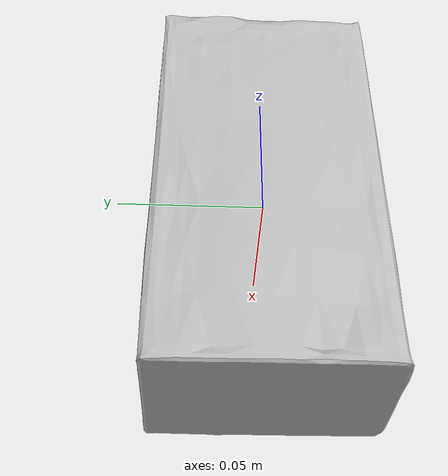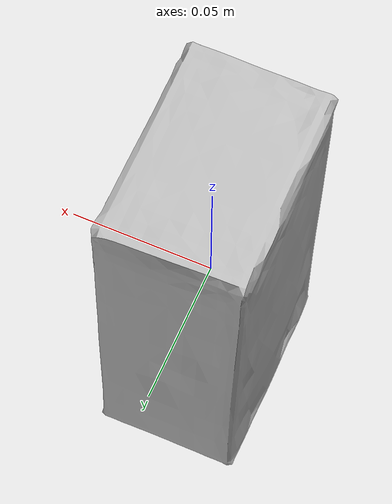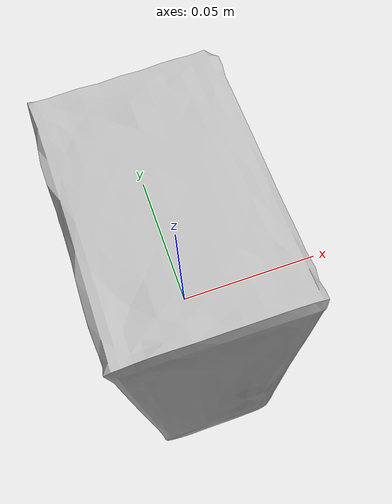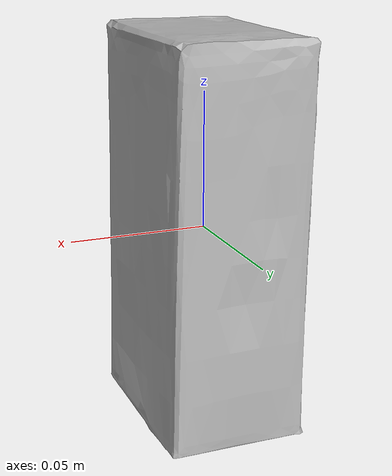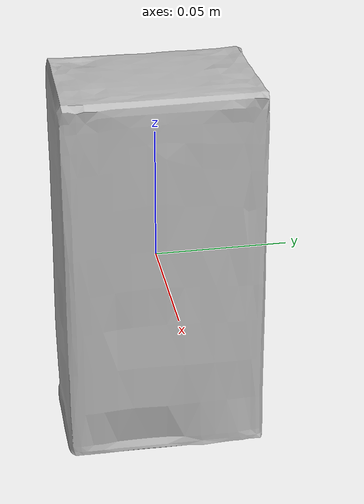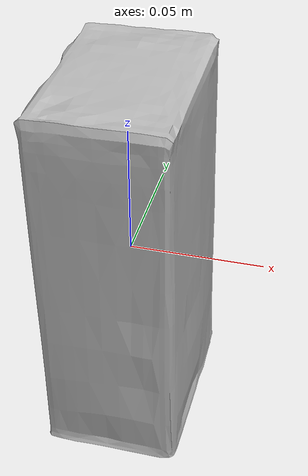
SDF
<?xml version='1.0'?>
<sdf version='1.7'>
  <model name='MyWorld'>
    <link name='link'>
      <inertial>
        <pose>0 0 0 0 -0 0</pose>
        <mass>0.1</mass>
        <inertia>
          <ixx>1e-05</ixx>
          <ixy>0</ixy>
          <ixz>0</ixz>
          <iyy>1e-05</iyy>
          <iyz>0</iyz>
          <izz>1e-05</izz>
        </inertia>
      </inertial>
      <self_collide>0</self_collide>
      <enable_wind>0</enable_wind>
      <kinematic>0</kinematic>
      <pose>0 0 0 0 -0 0</pose>
      <gravity>1</gravity>
      <visual name='visual'>
        <pose>0 0 0 0 -0 0</pose>
        <geometry>
          <mesh>
            <uri>/home/jan/ws_myrobot/src/myrobot/model/objects/oats/oats.dae</uri>
          </mesh>
        </geometry>
        <material>
          <lighting>1</lighting>
          <shader type='pixel'>
            <normal_map>__default__</normal_map>
          </shader>
        </material>
        <transparency>0</transparency>
        <cast_shadows>1</cast_shadows>
      </visual>
      <collision name='collision'>
        <laser_retro>0</laser_retro>
        <max_contacts>10</max_contacts>
        <pose>0 0 0 0 -0 0</pose>
        <geometry>
          <mesh>
            <uri>/home/jan/ws_myrobot/src/myrobot/model/objects/oats/oats.dae</uri>
            <scale>1 1 1</scale>
          </mesh>
        </geometry>
        <surface>
          <friction>
            <ode>
              <mu>1</mu>
              <mu2>1</mu2>
              <fdir1>0 0 0</fdir1>
              <slip1>0</slip1>
              <slip2>0</slip2>
            </ode>
            <torsional>
              <coefficient>1</coefficient>
              <patch_radius>0</patch_radius>
              <surface_radius>0</surface_radius>
              <use_patch_radius>1</use_patch_radius>
              <ode>
                <slip>0</slip>
              </ode>
            </torsional>
          </friction>
          <bounce>
            <restitution_coefficient>0</restitution_coefficient>
            <threshold>1e+06</threshold>
          </bounce>
          <contact>
            <collide_without_contact>0</collide_without_contact>
            <collide_without_contact_bitmask>1</collide_without_contact_bitmask>
            <collide_bitmask>1</collide_bitmask>
            <ode>
              <soft_cfm>0</soft_cfm>
              <soft_erp>0.2</soft_erp>
              <kp>1e+07</kp>
              <kd>1</kd>
              <max_vel>0.01</max_vel>
              <min_depth>0</min_depth>
            </ode>
            <bullet>
              <split_impulse>1</split_impulse>
              <split_impulse_penetration_threshold>-0.01</split_impulse_penetration_threshold>
              <soft_cfm>0</soft_cfm>
              <soft_erp>0.2</soft_erp>
              <kp>1e+07</kp>
              <kd>1</kd>
            </bullet>
          </contact>
        </surface>
      </collision>
    </link>
    <static>0</static>
    <allow_auto_disable>1</allow_auto_disable>
  </model>
</sdf>
